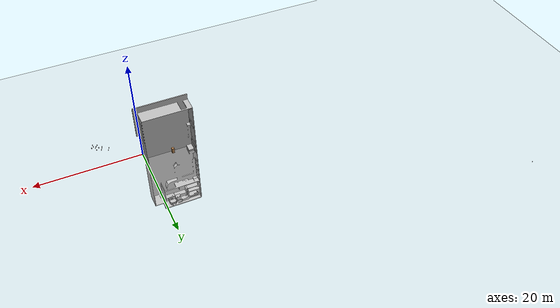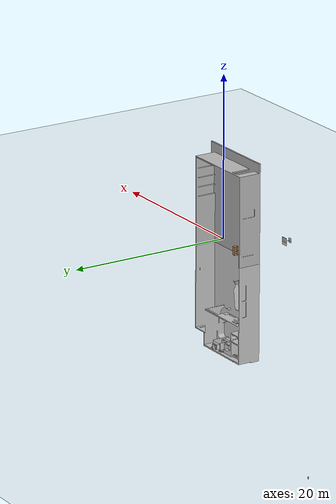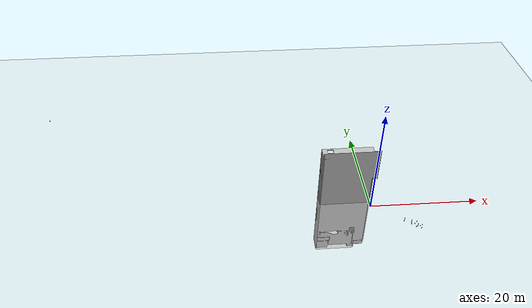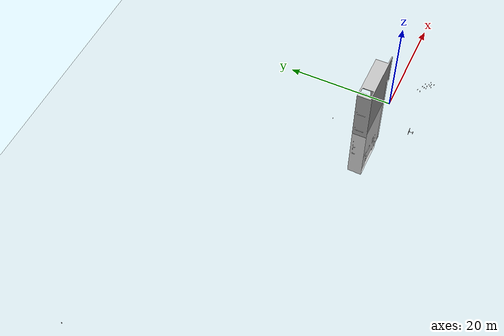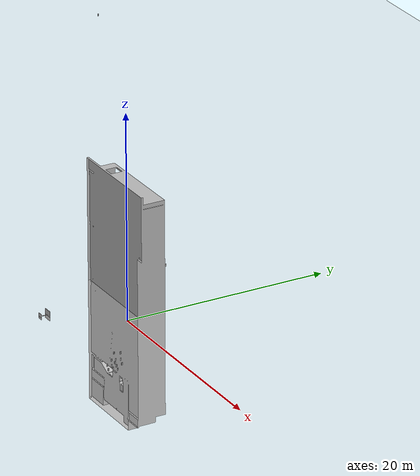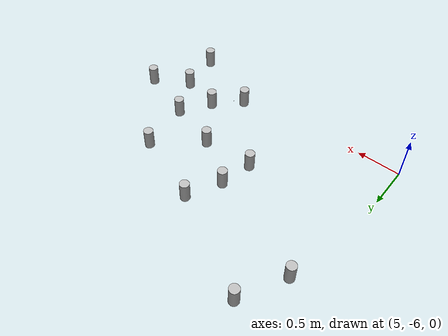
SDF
<sdf version="1.6">
 <world name="default">
  <light name="sun" type="directional">
   <pose>0 0 10 0 -0 0</pose>
   <diffuse>0.8 0.8 0.8 1</diffuse>
   <specular>0.1 0.1 0.1 1</specular>
   <attenuation>
    <range>1000</range>
    <constant>0.9</constant>
    <linear>0.01</linear>
    <quadratic>0.001</quadratic>
   </attenuation>
   <direction>-0.5 0.5 -1</direction>
  </light>
  <model name="ground_plane">
   <static>1</static>
   <link name="link">
    <collision name="collision">
     <geometry><plane><normal>0 0 1</normal><size>100 100</size></plane></geometry>
     <surface><friction><ode><mu>100</mu><mu2>50</mu2></ode></friction></surface>
    </collision>
    <visual name="visual">
     <cast_shadows>0</cast_shadows>
     <geometry><plane><normal>0 0 1</normal><size>100 100</size></plane></geometry>
     <material><script><uri>/worlds/gazebo.material</uri><name>Gazebo/Grey</name></script></material>
    </visual>
   </link>
  </model>
  <gravity>0 0 -9.8</gravity>
  <magnetic_field>6e-06 2.3e-05 -4.2e-05</magnetic_field>
  <atmosphere type="adiabatic"/>
  <physics name="default_physics" default="0" type="ode">
   <max_step_size>0.001</max_step_size>
   <real_time_factor>1</real_time_factor>
   <real_time_update_rate>1000</real_time_update_rate>
  </physics>
  <scene><ambient>0.4 0.4 0.4 1</ambient><background>0.7 0.7 0.7 1</background><shadows>1</shadows></scene>
  <spherical_coordinates>
   <surface_model>EARTH_WGS84</surface_model>
   <latitude_deg>0</latitude_deg>
   <longitude_deg>0</longitude_deg>
   <elevation>0</elevation>
   <heading_deg>0</heading_deg>
  </spherical_coordinates>
  <model name="cafe">
   <static>1</static>
   <link name="link">
    <collision name="main_floor">
     <pose>-0.4 -0.75 0.0948 0 -0 0</pose>
     <geometry><box><size>9.38 22.63 0.19</size></box></geometry>
    </collision>
    <collision name="wall_1">
     <pose>-5.03 0.53 1.415 0 -0 0</pose>
     <geometry><box><size>0.12 23.16 2.83</size></box></geometry>
    </collision>
    <collision name="wall_2">
     <pose>4.24 -0.31 1.415 0 -0 0</pose>
     <geometry><box><size>0.12 21.48 2.83</size></box></geometry>
    </collision>
    <collision name="wall_3">
     <pose>-1.48 7.43 1.415 0 -0 0</pose>
     <geometry><box><size>7.2 0.12 2.83</size></box></geometry>
    </collision>
    <collision name="wall_4">
     <pose>2.09 8.9 1.435 0 -0 0</pose>
     <geometry><box><size>0.12 3.05 2.87</size></box></geometry>
    </collision>
    <collision name="wall_5">
     <pose>3.155 10.4 1.435 0 -0 0</pose>
     <geometry><box><size>2.13 0.12 2.87</size></box></geometry>
    </collision>
    <collision name="wall_6">
     <pose>0.615 -10.98 1.415 0 -0 0</pose>
     <geometry><box><size>7.36 0.15 2.83</size></box></geometry>
    </collision>
    <collision name="wall_7">
     <pose>-4.62 -10.98 1.415 0 -0 0</pose>
     <geometry><box><size>0.93 0.15 2.83</size></box></geometry>
    </collision>
    <collision name="wall_8">
     <pose>-3.61 -10.98 2.69 0 -0 0</pose>
     <geometry><box><size>1.09 0.15 0.28</size></box></geometry>
    </collision>
    <collision name="coke">
     <pose>-4.385 0.26 0.95 0 -0 0</pose>
     <geometry><box><size>1.03 1.03 1.52</size></box></geometry>
    </collision>
    <visual name="visual">
     <geometry><mesh><uri>/worlds/models/cafe/cafe.obj</uri><scale>1 1 1</scale></mesh></geometry>
    </visual>
   </link>
   <pose>-4.26354 1.07505 0 0 -0 0</pose>
  </model>
  <model name="beer">
   <link name="link">
    <pose>0 0 0.115 0 -0 0</pose>
    <inertial>
     <mass>0.39</mass>
     <inertia><ixx>0.00058</ixx><ixy>0</ixy><ixz>0</ixz><iyy>0.00058</iyy><iyz>0</iyz><izz>0.00019</izz></inertia>
    </inertial>
    <collision name="collision">
     <geometry><cylinder><radius>0.055</radius><length>0.23</length></cylinder></geometry>
    </collision>
    <visual name="visual">
     <geometry><cylinder><radius>0.055</radius><length>0.23</length></cylinder></geometry>
     <material>
      <script>
       <uri>/worlds/models/beer/materials/scripts</uri>
       <uri>/worlds/models/beer/materials/textures</uri>
       <name>Beer/Diffuse</name>
      </script>
     </material>
    </visual>
   </link>
   <pose>-63.9034 31.745 -7e-06 -1e-06 -0 -1.8e-05</pose>
  </model>
  <model name="beer_0">
   <link name="link">
    <pose>0 0 0.115 0 -0 0</pose>
    <inertial>
     <mass>0.39</mass>
     <inertia><ixx>0.00058</ixx><ixy>0</ixy><ixz>0</ixz><iyy>0.00058</iyy><iyz>0</iyz><izz>0.00019</izz></inertia>
    </inertial>
    <collision name="collision">
     <geometry><cylinder><radius>0.055</radius><length>0.23</length></cylinder></geometry>
    </collision>
    <visual name="visual">
     <geometry><cylinder><radius>0.055</radius><length>0.23</length></cylinder></geometry>
     <material>
      <script>
       <uri>/worlds/models/beer/materials/scripts</uri>
       <uri>/worlds/models/beer/materials/textures</uri>
       <name>Beer/Diffuse</name>
      </script>
     </material>
    </visual>
   </link>
   <pose>7.50391 -5.19105 -2e-06 1e-06 0 -1.7e-05</pose>
  </model>
  <model name="ball_bearing">
   <link name="link">
    <pose>0 0 0.003 0 -0 0</pose>
    <inertial>
     <mass>0.0011</mass>
     <inertia>
      <ixx>3.96e-09</ixx>
      <ixy>0</ixy>
      <ixz>0</ixz>
      <iyy>3.96e-09</iyy>
      <iyz>0</iyz>
      <izz>3.96e-09</izz>
     </inertia>
    </inertial>
    <collision name="collision">
     <geometry><sphere><radius>0.003</radius></sphere></geometry>
     <surface>
      <contact>
       <poissons_ratio>0.305</poissons_ratio>
       <elastic_modulus>2e+11</elastic_modulus>
       <ode><kp>100000</kp><kd>100</kd><max_vel>100</max_vel><min_depth>0.001</min_depth></ode>
      </contact>
      <friction>
       <torsional>
        <coefficient>1</coefficient>
        <use_patch_radius>0</use_patch_radius>
        <surface_radius>0.01</surface_radius>
       </torsional>
      </friction>
     </surface>
    </collision>
    <visual name="visual">
     <geometry><sphere><radius>0.003</radius></sphere></geometry>
     <material>
      <script>
       <uri>/home/chengjiang/Projects/Drake/ogreskinect/build/gazebo.material1</uri>
       <name>Gazebo/Grey</name>
      </script>
     </material>
    </visual>
    <velocity_decay><linear>0</linear><angular>0.005</angular></velocity_decay>
   </link>
   <pose>7.13278 -5.77891 -0.000857 0 -0 0</pose>
  </model>
  <model name="beer_1">
   <link name="link">
    <pose>0 0 0.115 0 -0 0</pose>
    <inertial>
     <mass>0.39</mass>
     <inertia><ixx>0.00058</ixx><ixy>0</ixy><ixz>0</ixz><iyy>0.00058</iyy><iyz>0</iyz><izz>0.00019</izz></inertia>
    </inertial>
    <collision name="collision">
     <geometry><cylinder><radius>0.055</radius><length>0.23</length></cylinder></geometry>
    </collision>
    <visual name="visual">
     <geometry><cylinder><radius>0.055</radius><length>0.23</length></cylinder></geometry>
     <material>
      <script>
       <uri>/worlds/models/beer/materials/scripts</uri>
       <uri>/worlds/models/beer/materials/textures</uri>
       <name>Beer/Diffuse</name>
      </script>
     </material>
    </visual>
   </link>
   <pose>7.28833 -5.5401 -2e-06 0 -0 -1.5e-05</pose>
  </model>
  <model name="beer_2">
   <link name="link">
    <pose>0 0 0.115 0 -0 0</pose>
    <inertial>
     <mass>0.39</mass>
     <inertia><ixx>0.00058</ixx><ixy>0</ixy><ixz>0</ixz><iyy>0.00058</iyy><iyz>0</iyz><izz>0.00019</izz></inertia>
    </inertial>
    <collision name="collision">
     <geometry><cylinder><radius>0.055</radius><length>0.23</length></cylinder></geometry>
    </collision>
    <visual name="visual">
     <geometry><cylinder><radius>0.055</radius><length>0.23</length></cylinder></geometry>
     <material>
      <script>
       <uri>/worlds/models/beer/materials/scripts</uri>
       <uri>/worlds/models/beer/materials/textures</uri>
       <name>Beer/Diffuse</name>
      </script>
     </material>
    </visual>
   </link>
   <pose>7.74486 -5.6537 -7e-06 -0 -0 -1.4e-05</pose>
  </model>
  <model name="beer_3">
   <link name="link">
    <pose>0 0 0.115 0 -0 0</pose>
    <inertial>
     <mass>0.39</mass>
     <inertia><ixx>0.00058</ixx><ixy>0</ixy><ixz>0</ixz><iyy>0.00058</iyy><iyz>0</iyz><izz>0.00019</izz></inertia>
    </inertial>
    <collision name="collision">
     <geometry><cylinder><radius>0.055</radius><length>0.23</length></cylinder></geometry>
    </collision>
    <visual name="visual">
     <geometry><cylinder><radius>0.055</radius><length>0.23</length></cylinder></geometry>
     <material>
      <script>
       <uri>/worlds/models/beer/materials/scripts</uri>
       <uri>/worlds/models/beer/materials/textures</uri>
       <name>Beer/Diffuse</name>
      </script>
     </material>
    </visual>
   </link>
   <pose>6.40272 -4.65702 -2e-06 1e-06 -0 -1.3e-05</pose>
  </model>
  <model name="beer_4">
   <link name="link">
    <pose>0 0 0.115 0 -0 0</pose>
    <inertial>
     <mass>0.39</mass>
     <inertia><ixx>0.00058</ixx><ixy>0</ixy><ixz>0</ixz><iyy>0.00058</iyy><iyz>0</iyz><izz>0.00019</izz></inertia>
    </inertial>
    <collision name="collision">
     <geometry><cylinder><radius>0.055</radius><length>0.23</length></cylinder></geometry>
    </collision>
    <visual name="visual">
     <geometry><cylinder><radius>0.055</radius><length>0.23</length></cylinder></geometry>
     <material>
      <script>
       <uri>/worlds/models/beer/materials/scripts</uri>
       <uri>/worlds/models/beer/materials/textures</uri>
       <name>Beer/Diffuse</name>
      </script>
     </material>
    </visual>
   </link>
   <pose>6.59175 -4.27069 -7e-06 -1e-06 -0 -1.2e-05</pose>
  </model>
  <model name="beer_5">
   <link name="link">
    <pose>0 0 0.115 0 -0 0</pose>
    <inertial>
     <mass>0.39</mass>
     <inertia><ixx>0.00058</ixx><ixy>0</ixy><ixz>0</ixz><iyy>0.00058</iyy><iyz>0</iyz><izz>0.00019</izz></inertia>
    </inertial>
    <collision name="collision">
     <geometry><cylinder><radius>0.055</radius><length>0.23</length></cylinder></geometry>
    </collision>
    <visual name="visual">
     <geometry><cylinder><radius>0.055</radius><length>0.23</length></cylinder></geometry>
     <material>
      <script>
       <uri>/worlds/models/beer/materials/scripts</uri>
       <uri>/worlds/models/beer/materials/textures</uri>
       <name>Beer/Diffuse</name>
      </script>
     </material>
    </visual>
   </link>
   <pose>7.41365 -4.5808 -2e-06 1e-06 -0 -1.1e-05</pose>
  </model>
  <model name="beer_6">
   <link name="link">
    <pose>0 0 0.115 0 -0 0</pose>
    <inertial>
     <mass>0.39</mass>
     <inertia><ixx>0.00058</ixx><ixy>0</ixy><ixz>0</ixz><iyy>0.00058</iyy><iyz>0</iyz><izz>0.00019</izz></inertia>
    </inertial>
    <collision name="collision">
     <geometry><cylinder><radius>0.055</radius><length>0.23</length></cylinder></geometry>
    </collision>
    <visual name="visual">
     <geometry><cylinder><radius>0.055</radius><length>0.23</length></cylinder></geometry>
     <material>
      <script>
       <uri>/worlds/models/beer/materials/scripts</uri>
       <uri>/worlds/models/beer/materials/textures</uri>
       <name>Beer/Diffuse</name>
      </script>
     </material>
    </visual>
   </link>
   <pose>6.32737 -5.03551 -7e-06 -0 -0 -1e-05</pose>
  </model>
  <model name="beer_7">
   <link name="link">
    <pose>0 0 0.115 0 -0 0</pose>
    <inertial>
     <mass>0.39</mass>
     <inertia><ixx>0.00058</ixx><ixy>0</ixy><ixz>0</ixz><iyy>0.00058</iyy><iyz>0</iyz><izz>0.00019</izz></inertia>
    </inertial>
    <collision name="collision">
     <geometry><cylinder><radius>0.055</radius><length>0.23</length></cylinder></geometry>
    </collision>
    <visual name="visual">
     <geometry><cylinder><radius>0.055</radius><length>0.23</length></cylinder></geometry>
     <material>
      <script>
       <uri>/worlds/models/beer/materials/scripts</uri>
       <uri>/worlds/models/beer/materials/textures</uri>
       <name>Beer/Diffuse</name>
      </script>
     </material>
    </visual>
   </link>
   <pose>7.0073 -5.82106 -2e-06 1e-06 -0 -9e-06</pose>
  </model>
  <model name="beer_8">
   <link name="link">
    <pose>0 0 0.115 0 -0 0</pose>
    <inertial>
     <mass>0.39</mass>
     <inertia><ixx>0.00058</ixx><ixy>0</ixy><ixz>0</ixz><iyy>0.00058</iyy><iyz>0</iyz><izz>0.00019</izz></inertia>
    </inertial>
    <collision name="collision">
     <geometry><cylinder><radius>0.055</radius><length>0.23</length></cylinder></geometry>
    </collision>
    <visual name="visual">
     <geometry><cylinder><radius>0.055</radius><length>0.23</length></cylinder></geometry>
     <material>
      <script>
       <uri>/worlds/models/beer/materials/scripts</uri>
       <uri>/worlds/models/beer/materials/textures</uri>
       <name>Beer/Diffuse</name>
      </script>
     </material>
    </visual>
   </link>
   <pose>7.82684 -6.15362 -7e-06 -1e-06 -0 -8e-06</pose>
  </model>
  <model name="beer_9">
   <link name="link">
    <pose>0 0 0.115 0 -0 0</pose>
    <inertial>
     <mass>0.39</mass>
     <inertia><ixx>0.00058</ixx><ixy>0</ixy><ixz>0</ixz><iyy>0.00058</iyy><iyz>0</iyz><izz>0.00019</izz></inertia>
    </inertial>
    <collision name="collision">
     <geometry><cylinder><radius>0.055</radius><length>0.23</length></cylinder></geometry>
    </collision>
    <visual name="visual">
     <geometry><cylinder><radius>0.055</radius><length>0.23</length></cylinder></geometry>
     <material>
      <script>
       <uri>/worlds/models/beer/materials/scripts</uri>
       <uri>/worlds/models/beer/materials/textures</uri>
       <name>Beer/Diffuse</name>
      </script>
     </material>
    </visual>
   </link>
   <pose>8.15246 -5.42299 -2e-06 1e-06 0 -7e-06</pose>
  </model>
  <model name="beer_10">
   <link name="link">
    <pose>0 0 0.115 0 -0 0</pose>
    <inertial>
     <mass>0.39</mass>
     <inertia><ixx>0.00058</ixx><ixy>0</ixy><ixz>0</ixz><iyy>0.00058</iyy><iyz>0</iyz><izz>0.00019</izz></inertia>
    </inertial>
    <collision name="collision">
     <geometry><cylinder><radius>0.055</radius><length>0.23</length></cylinder></geometry>
    </collision>
    <visual name="visual">
     <geometry><cylinder><radius>0.055</radius><length>0.23</length></cylinder></geometry>
     <material>
      <script>
       <uri>/worlds/models/beer/materials/scripts</uri>
       <uri>/worlds/models/beer/materials/textures</uri>
       <name>Beer/Diffuse</name>
      </script>
     </material>
    </visual>
   </link>
   <pose>5.46186 -3.67072 -7e-06 -0 -0 -6e-06</pose>
  </model>
  <model name="beer_11">
   <link name="link">
    <pose>0 0 0.115 0 -0 0</pose>
    <inertial>
     <mass>0.39</mass>
     <inertia><ixx>0.00058</ixx><ixy>0</ixy><ixz>0</ixz><iyy>0.00058</iyy><iyz>0</iyz><izz>0.00019</izz></inertia>
    </inertial>
    <collision name="collision">
     <geometry><cylinder><radius>0.055</radius><length>0.23</length></cylinder></geometry>
    </collision>
    <visual name="visual">
     <geometry><cylinder><radius>0.055</radius><length>0.23</length></cylinder></geometry>
     <material>
      <script>
       <uri>/worlds/models/beer/materials/scripts</uri>
       <uri>/worlds/models/beer/materials/textures</uri>
       <name>Beer/Diffuse</name>
      </script>
     </material>
    </visual>
   </link>
   <pose>5.20462 -4.18194 -2e-06 1e-06 -0 -5e-06</pose>
  </model>
  <model name="beer_12">
   <link name="link">
    <pose>0 0 0.115 0 -0 0</pose>
    <inertial>
     <mass>0.39</mass>
     <inertia><ixx>0.00058</ixx><ixy>0</ixy><ixz>0</ixz><iyy>0.00058</iyy><iyz>0</iyz><izz>0.00019</izz></inertia>
    </inertial>
    <collision name="collision">
     <geometry><cylinder><radius>0.055</radius><length>0.23</length></cylinder></geometry>
    </collision>
    <visual name="visual">
     <geometry><cylinder><radius>0.055</radius><length>0.23</length></cylinder></geometry>
     <material>
      <script>
       <uri>/worlds/models/beer/materials/scripts</uri>
       <uri>/worlds/models/beer/materials/textures</uri>
       <name>Beer/Diffuse</name>
      </script>
     </material>
    </visual>
   </link>
   <pose>6.92007 -5.00742 -7e-06 -1e-06 -0 -4e-06</pose>
  </model>
  <model name="beer_13">
   <link name="link">
    <pose>0 0 0.115 0 -0 0</pose>
    <inertial>
     <mass>0.39</mass>
     <inertia><ixx>0.00058</ixx><ixy>0</ixy><ixz>0</ixz><iyy>0.00058</iyy><iyz>0</iyz><izz>0.00019</izz></inertia>
    </inertial>
    <collision name="collision">
     <geometry><cylinder><radius>0.055</radius><length>0.23</length></cylinder></geometry>
    </collision>
    <visual name="visual">
     <geometry><cylinder><radius>0.055</radius><length>0.23</length></cylinder></geometry>
     <material>
      <script>
       <uri>/worlds/models/beer/materials/scripts</uri>
       <uri>/worlds/models/beer/materials/textures</uri>
       <name>Beer/Diffuse</name>
      </script>
     </material>
    </visual>
   </link>
   <pose>-7.86343 8.31177 0.189791 3e-06 1.1e-05 0.01537</pose>
  </model>
  <model name="cafe_table">
   <static>1</static>
   <link name="link">
    <collision name="surface">
     <pose>0 0 0.755 0 -0 0</pose>
     <geometry><box><size>0.913 0.913 0.04</size></box></geometry>
    </collision>
    <collision name="column">
     <pose>0 0 0.37 0 -0 0</pose>
     <geometry><box><size>0.042 0.042 0.74</size></box></geometry>
    </collision>
    <collision name="base">
     <pose>0 0 0.02 0 -0 0</pose>
     <geometry><box><size>0.56 0.56 0.04</size></box></geometry>
    </collision>
    <visual name="visual">
     <geometry><mesh><uri>/worlds/models/cafe_table/cafe_table.obj</uri><scale>1 1 1</scale></mesh></geometry>
    </visual>
   </link>
   <pose>-4.60984 -6.2532 0 0 -0 0</pose>
  </model>
  <model name="cabinet">
   <static>1</static>
   <link name="cabinet_bottom_plate">
    <inertial>
     <pose>0 0 -1 0 -0 0</pose>
     <inertia><ixx>2.05</ixx><ixy>0</ixy><ixz>0</ixz><iyy>2.05</iyy><iyz>0</iyz><izz>2.05</izz></inertia>
     <mass>25</mass>
    </inertial>
    <collision name="cabinet_bottom_plate_geom">
     <pose>0 0 0.01 0 -0 0</pose>
     <geometry><box><size>0.45 0.45 0.02</size></box></geometry>
    </collision>
    <visual name="cabinet_bottom_plate_geom_visual">
     <pose>0 0 0.01 0 -0 0</pose>
     <geometry><box><size>0.45 0.45 0.02</size></box></geometry>
     <material><script><uri>/worlds/gazebo.material</uri><name>Gazebo/Wood</name></script></material>
    </visual>
    <collision name="cabinet_bottom_plate_geom_cabinet_back_plate">
     <pose>0.235 0 0.51 0 -0 0</pose>
     <geometry><box><size>0.02 0.45 1.02</size></box></geometry>
    </collision>
    <visual name="cabinet_bottom_plate_geom_cabinet_back_plate_visual">
     <pose>0.235 0 0.51 0 -0 0</pose>
     <geometry><box><size>0.02 0.45 1.02</size></box></geometry>
     <material>
      <script>
       <uri>/home/chengjiang/Projects/Drake/ogreskinect/build/gazebo.material1</uri>
       <name>Gazebo/Wood</name>
      </script>
     </material>
    </visual>
    <collision name="cabinet_bottom_plate_geom_cabinet_left_plate">
     <pose>0 0.235 0.51 0 -0 0</pose>
     <geometry><box><size>0.45 0.02 1.02</size></box></geometry>
    </collision>
    <visual name="cabinet_bottom_plate_geom_cabinet_left_plate_visual">
     <pose>0 0.235 0.51 0 -0 0</pose>
     <geometry><box><size>0.45 0.02 1.02</size></box></geometry>
     <material>
      <script>
       <uri>/home/chengjiang/Projects/Drake/ogreskinect/build/gazebo.material1</uri>
       <name>Gazebo/Wood</name>
      </script>
     </material>
    </visual>
    <collision name="cabinet_bottom_plate_geom_cabinet_middle_plate">
     <pose>0 0 0.51 0 -0 0</pose>
     <geometry><box><size>0.45 0.45 0.02</size></box></geometry>
    </collision>
    <visual name="cabinet_bottom_plate_geom_cabinet_middle_plate_visual">
     <pose>0 0 0.51 0 -0 0</pose>
     <geometry><box><size>0.45 0.45 0.02</size></box></geometry>
     <material>
      <script>
       <uri>/home/chengjiang/Projects/Drake/ogreskinect/build/gazebo.material1</uri>
       <name>Gazebo/Wood</name>
      </script>
     </material>
    </visual>
    <collision name="cabinet_bottom_plate_geom_cabinet_right_plate">
     <pose>0 -0.235 0.51 0 -0 0</pose>
     <geometry><box><size>0.45 0.02 1.02</size></box></geometry>
    </collision>
    <visual name="cabinet_bottom_plate_geom_cabinet_right_plate_visual">
     <pose>0 -0.235 0.51 0 -0 0</pose>
     <geometry><box><size>0.45 0.02 1.02</size></box></geometry>
     <material>
      <script>
       <uri>/home/chengjiang/Projects/Drake/ogreskinect/build/gazebo.material1</uri>
       <name>Gazebo/Wood</name>
      </script>
     </material>
    </visual>
    <collision name="cabinet_bottom_plate_geom_cabinet_top_plate">
     <pose>0 0 1.01 0 -0 0</pose>
     <geometry><box><size>0.45 0.45 0.02</size></box></geometry>
    </collision>
    <visual name="cabinet_bottom_plate_geom_cabinet_top_plate_visual">
     <pose>0 0 1.01 0 -0 0</pose>
     <geometry><box><size>0.45 0.45 0.02</size></box></geometry>
     <material>
      <script>
       <uri>/home/chengjiang/Projects/Drake/ogreskinect/build/gazebo.material1</uri>
       <name>Gazebo/Wood</name>
      </script>
     </material>
    </visual>
   </link>
   <pose>-5.33497 1.81441 0 0 -0 0</pose>
  </model>
 </world>
</sdf>
